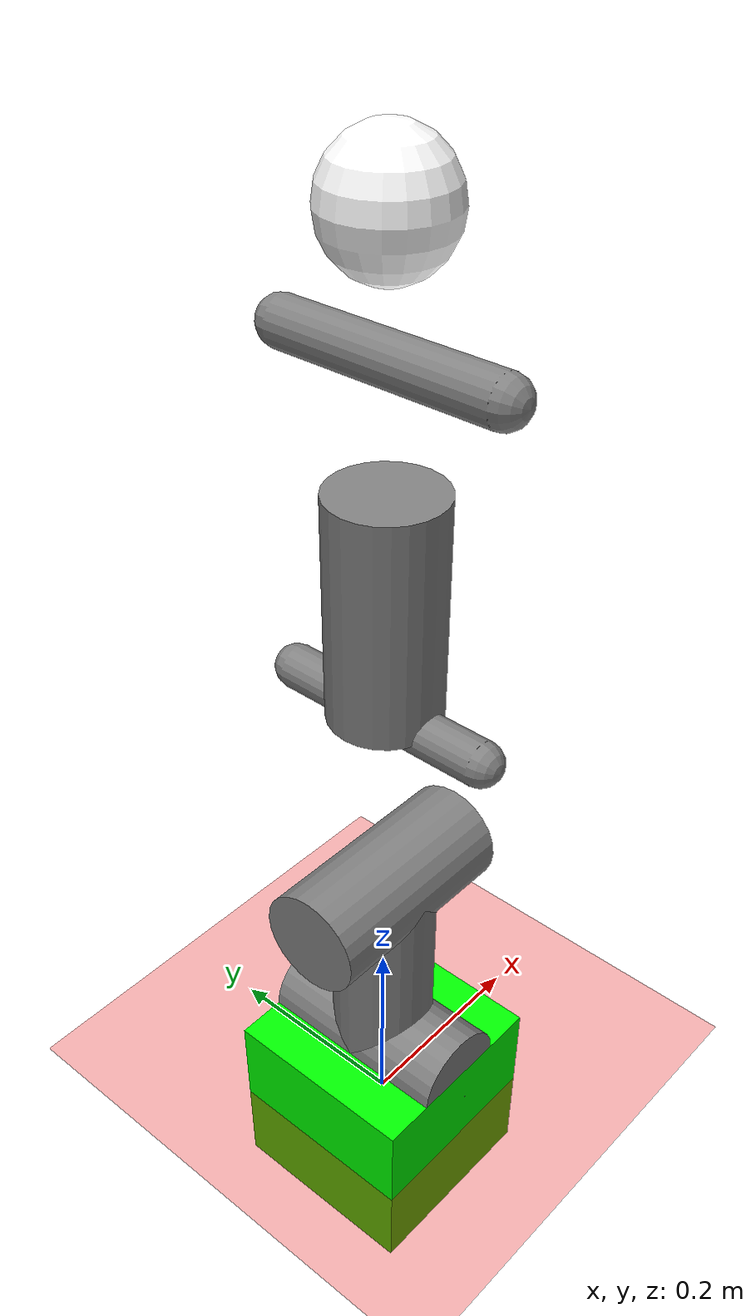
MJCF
<?xml version="1.0" ?>
<mujoco model="robot_arm">
    <option timestep="0.01" />

    <asset>
        <material name="blue_" rgba="0 0 1 1" />
        <material name="green" rgba="0 1 0 1" />
        <material name="red__" rgba="1 0 0 1" />
        <material name="white" rgba="1 1 1 1" />
    </asset>

    <worldbody>
        <geom type="plane" size="15 15 0.1" pos="0 0 0" rgba=".9 0 0 1" />
        <light diffuse=".5 .5 .5" pos="0 0 3" dir="0 0 -1" />

        <!-- Base -->
        <body name="base" pos="0 0 0">
            <geom type="box" size="0.1 0.1 0.1" rgba="0 1 0 1" />

            <!-- Shoulder Pitch -->
            <body name="shoulder_pitch" pos="0 0 0.1">
                <joint name="shoulder_pitch_joint" type="hinge" pos="0 0 0" axis="1 0 0" range="-90 90" />
                <geom type="cylinder" size="0.05 0.1" pos="0 0 0" euler="90 0 0" mass="0.35"/>

                <!-- Shoulder Roll -->
                <body name="shoulder_roll" pos="0 0 0.1">
                    <joint name="shoulder_roll_joint" type="hinge" pos="0 0 0" axis="0 1 0" range="-90 90" />
                    <geom type="cylinder" size="0.05 0.1" pos="0 0 0" euler="0 0 0" mass="0.35"/>

                    <!-- Shoulder Yaw -->
                    <body name="shoulder_yaw" pos="0 0 0.1">
                        <joint name="shoulder_yaw_joint" type="hinge" pos="0 0 0" axis="0 0 1" range="-90 90" />
                        <geom type="cylinder" size="0.05 0.1" pos="0 0 0" euler="0 90 0" mass="0.35"/>

                        <!-- Link 1 -->
                        <body name="link_1" pos="0 0 0.1">
                            <geom type="capsule" size="0.02 0.1" pos="0 0 0.1" euler="90 0 0" mass="0.02"/>

                            <!-- Elbow Pitch -->
                            <body name="elbow_pitch" pos="0 0 0.2">
                                <joint name="elbow_pitch_joint" type="hinge" pos="0 0 0" axis="1 0 0" range="-90 90" />
                                <geom type="cylinder" size="0.05 0.1" pos="0 0 0" euler="0 0 0" mass="0.35"/>

                                <!-- Link 2 -->
                                <body name="link_2" pos="0 0 0.1">
                                    <geom type="capsule" size="0.02 0.1" pos="0 0 0.1" euler="90 0 0" mass="0.02"/>

                                    <!-- End Effector -->
                                    <body name="end_effector" pos="0 0 0.2">
                                        <geom type="sphere" size="0.05" pos="0 0 0" rgba="1 1 1 1" />
                                    </body>
                                </body>
                            </body>
                        </body>
                    </body>
                </body>
            </body>
        </body>
    </worldbody>

    <actuator>
        <motor gear="100" joint="shoulder_pitch_joint" name="actuator_shoulder_pitch" ctrlrange="-2.5 2.5" ctrllimited="true"/>
        <motor gear="100" joint="shoulder_roll_joint" name="actuator_shoulder_roll" ctrlrange="-2.5 2.5" ctrllimited="true"/>
        <motor gear="100" joint="shoulder_yaw_joint" name="actuator_shoulder_yaw" ctrlrange="-2.5 2.5" ctrllimited="true"/>
        <motor gear="100" joint="elbow_pitch_joint" name="actuator_elbow_pitch" ctrlrange="-2.5 2.5" ctrllimited="true"/>
    </actuator>
</mujoco>
